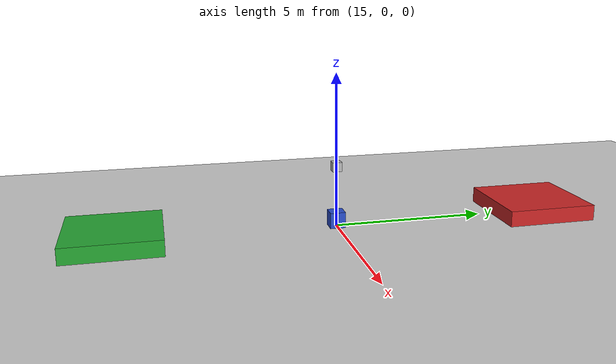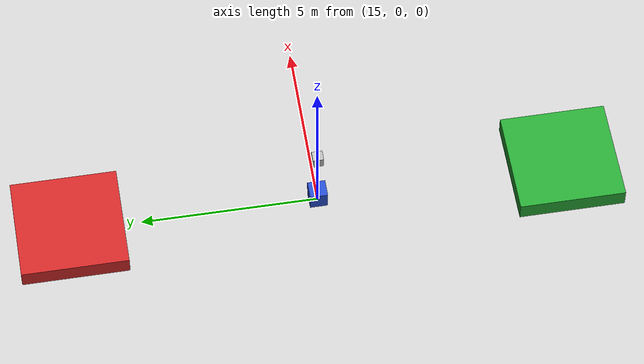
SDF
<?xml version="1.0" ?>
<sdf version="1.5">
  <world name="default">
    <!-- A global light source -->
    <include>
      <uri>model://sun</uri>
    </include>
    <!-- A ground plane -->
    <include>
      <uri>model://ground_plane</uri>
      <material>
        <ambient>0 0 255 1</ambient>
        <diffuse>0 0 255 1</diffuse>
        <specular>0 0 0 0</specular>
        <emissive>0 0 0 0</emissive>
      </material>
    </include>

    <include>
      <uri>model://green_block</uri>
      <static>true</static>
      <pose>15 -7 0 0 0 0</pose>
    </include>

    <include>
      <uri>model://blue_block</uri>
      <static>true</static>
      <pose>15 0 0 0 0 0</pose>
    </include>

    <include>
      <uri>model://character001_face_cube</uri>
      <name>character001_face_cube4</name>
      <static>false</static>
      <pose>15 0 2 0 0 3.14</pose>
    </include>

    <include>
      <uri>model://red_block</uri>
      <static>true</static>
      <pose>15 7 0 0 0 0</pose>
    </include>

  </world>

</sdf>

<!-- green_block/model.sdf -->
<sdf version="1.5">
  <model name="green_block">
    <static>false</static>
    <link name="link">
      <collision name="collision">
        <geometry>
          <box>
            <size>3 3 1</size>
          </box>
        </geometry>
        <surface>
          <friction>
            <ode>
              <mu>100</mu>
              <mu2>50</mu2>
            </ode>
          </friction>
        </surface>
      </collision>
      <visual name="visual">
        <geometry>
          <box>
            <size>3 3 1</size>
          </box>
        </geometry>
        <material>
          <script>
            <uri>file://media/materials/scripts/gazebo.material</uri>
            <name>Gazebo/Green</name>
          </script>
        </material>
      </visual>
    </link>
  </model>

</sdf>

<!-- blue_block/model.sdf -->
<sdf version="1.5">
  <model name="blue_block">
    <static>false</static>
    <link name="link">
      <collision name="collision">
        <geometry>
          <box>
            <size>0.5 0.5 1</size>
          </box>
        </geometry>
        <surface>
          <friction>
            <ode>
              <mu>100</mu>
              <mu2>50</mu2>
            </ode>
          </friction>
        </surface>
      </collision>
      <visual name="visual">
        <geometry>
          <box>
            <size>0.5 0.5 1</size>
          </box>
        </geometry>
        <material>
          <script>
            <uri>file://media/materials/scripts/gazebo.material</uri>
            <name>Gazebo/Blue</name>
          </script>
        </material>
      </visual>

    </link>
  </model>

</sdf>

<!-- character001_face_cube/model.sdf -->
<sdf version='1.6'>
  <model name='character001_face_cube'>
    <link name='link_0'>
      <inertial>
        <mass>0.1</mass>
        <inertia>
          <ixx>0.166667</ixx>
          <ixy>0</ixy>
          <ixz>0</ixz>
          <iyy>0.166667</iyy>
          <iyz>0</iyz>
          <izz>0.166667</izz>
        </inertia>
      </inertial>
      <pose frame=''>0 -5e-06 0 0 -0 0</pose>
      <visual name='visual'>
        <pose frame=''>0 0 0 0 -0 0</pose>
        <geometry>
          <mesh>
            <uri>model://character001_face_cube/meshes/face_cube_thomas_shelby1.dae</uri>
            <scale>0.15 0.15 0.15</scale>
          </mesh>
        </geometry>
        <transparency>0</transparency>
        <cast_shadows>1</cast_shadows>
      </visual>
      <collision name='collision'>
        <laser_retro>0</laser_retro>
        <max_contacts>10</max_contacts>
        <pose frame=''>0 0 0 0 -0 0</pose>
        <geometry>
          <mesh>
            <uri>model://character001_face_cube/meshes/face_cube_thomas_shelby1.dae</uri>
            <scale>0.15 0.15 0.15</scale>
          </mesh>
        </geometry>
        <surface>
          <friction>
            <ode>
              <mu>1</mu>
              <mu2>1</mu2>
              <fdir1>0 0 0</fdir1>
              <slip1>0</slip1>
              <slip2>0</slip2>
            </ode>
            <torsional>
              <coefficient>1</coefficient>
              <patch_radius>0</patch_radius>
              <surface_radius>0</surface_radius>
              <use_patch_radius>1</use_patch_radius>
              <ode>
                <slip>0</slip>
              </ode>
            </torsional>
          </friction>
          <bounce>
            <restitution_coefficient>0</restitution_coefficient>
            <threshold>1e+06</threshold>
          </bounce>
          <contact>
            <collide_without_contact>0</collide_without_contact>
            <collide_without_contact_bitmask>1</collide_without_contact_bitmask>
            <collide_bitmask>1</collide_bitmask>
            <ode>
              <soft_cfm>0</soft_cfm>
              <soft_erp>0.2</soft_erp>
              <kp>1e+13</kp>
              <kd>1</kd>
              <max_vel>0.01</max_vel>
              <min_depth>0</min_depth>
            </ode>
            <bullet>
              <split_impulse>1</split_impulse>
              <split_impulse_penetration_threshold>-0.01</split_impulse_penetration_threshold>
              <soft_cfm>0</soft_cfm>
              <soft_erp>0.2</soft_erp>
              <kp>1e+13</kp>
              <kd>1</kd>
            </bullet>
          </contact>
        </surface>
      </collision>
    </link>
    <static>0</static>
    <allow_auto_disable>1</allow_auto_disable>
  </model>
</sdf>

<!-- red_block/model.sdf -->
<sdf version="1.5">
  <model name="red_block">
    <static>false</static>
    <link name="link">
      <collision name="collision">
        <geometry>
          <box>
            <size>3 3 1</size>
          </box>
        </geometry>
        <surface>
          <friction>
            <ode>
              <mu>100</mu>
              <mu2>50</mu2>
            </ode>
          </friction>
        </surface>
      </collision>
      <visual name="visual">
        <geometry>
          <box>
            <size>3 3 1</size>
          </box>
        </geometry>
        <material>
          <script>
            <uri>file://media/materials/scripts/gazebo.material</uri>
            <name>Gazebo/Red</name>
          </script>
        </material>
      </visual>
    </link>
  </model>

</sdf>
